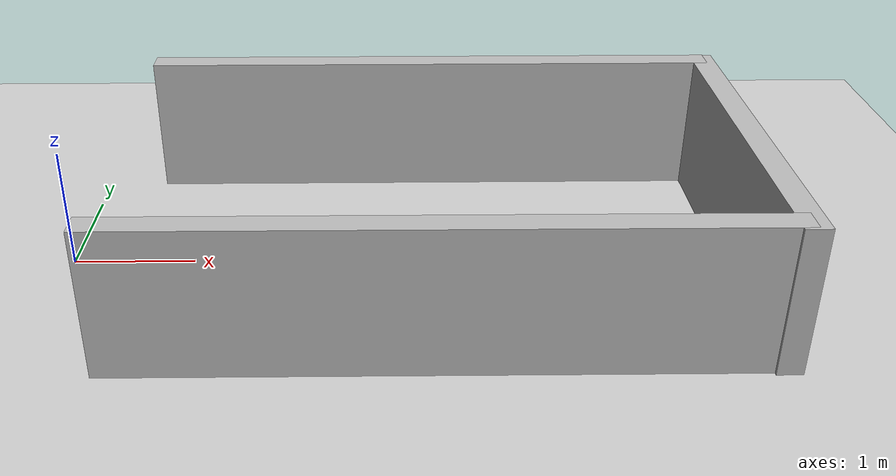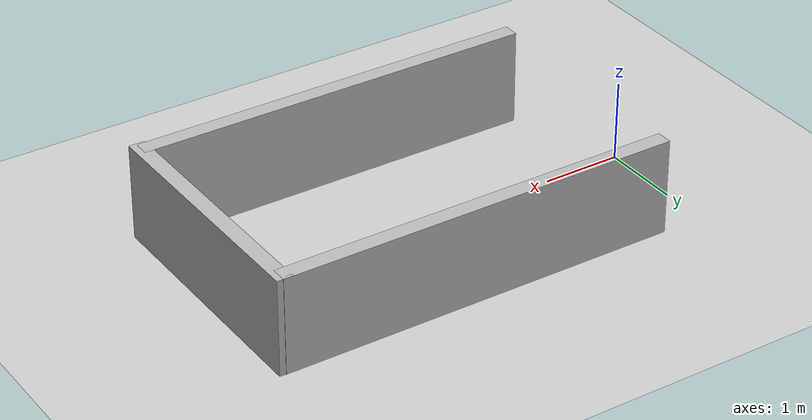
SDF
<?xml version="1.0"?>
<sdf version="1.6">
  <world name="v2-04g-r3-maneuver-s5035">
    <gravity>0 0 -9.81</gravity>
    <physics name="v2_deterministic" type="ode">
      <max_step_size>0.002</max_step_size>
      <real_time_update_rate>500</real_time_update_rate>
    </physics>
    <include>
      <uri>model://sun</uri>
    </include>
    <include>
      <uri>model://ground_plane</uri>
    </include>
    <model name="bay-left">
      <static>true</static>
      <pose>3.011869169 1.501529290 0.600000000 0 0 0.000468398</pose>
      <link name="link">
        <collision name="collision">
          <geometry>
            <box>
              <size>5.000000 0.200000 1.200000</size>
            </box>
          </geometry>
        </collision>
        <visual name="visual">
          <geometry>
            <box>
              <size>5.000000 0.200000 1.200000</size>
            </box>
          </geometry>
        </visual>
      </link>
    </model>
    <model name="bay-right">
      <static>true</static>
      <pose>3.003856313 -1.475534669 0.600000000 0 0 -0.001308943</pose>
      <link name="link">
        <collision name="collision">
          <geometry>
            <box>
              <size>5.000000 0.200000 1.200000</size>
            </box>
          </geometry>
        </collision>
        <visual name="visual">
          <geometry>
            <box>
              <size>5.000000 0.200000 1.200000</size>
            </box>
          </geometry>
        </visual>
      </link>
    </model>
    <model name="bay-back">
      <static>true</static>
      <pose>5.490231044 -0.002171591 0.600000000 0 0 0.000403136</pose>
      <link name="link">
        <collision name="collision">
          <geometry>
            <box>
              <size>0.200000 3.200000 1.200000</size>
            </box>
          </geometry>
        </collision>
        <visual name="visual">
          <geometry>
            <box>
              <size>0.200000 3.200000 1.200000</size>
            </box>
          </geometry>
        </visual>
      </link>
    </model>
  </world>
</sdf>
